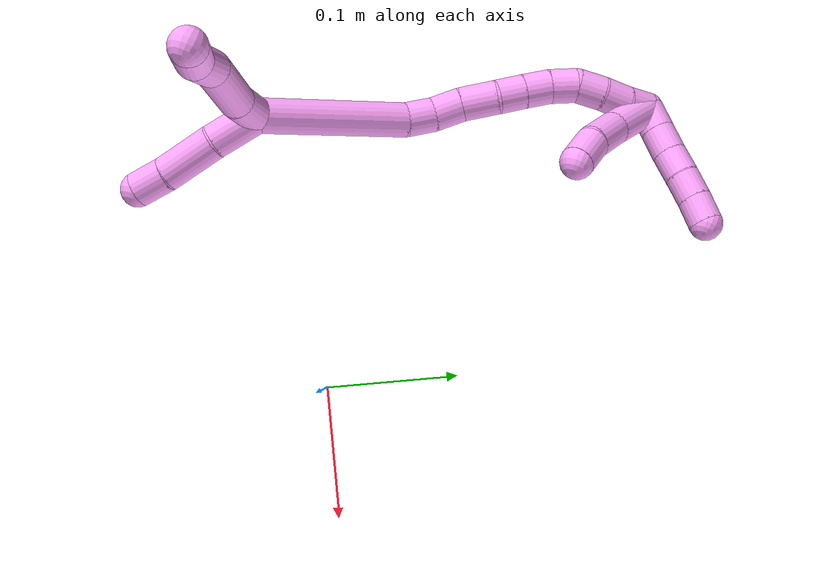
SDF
<sdf version="1.7">
 <world name="default">
  <model name="4">
   <static>0</static>
   <link name="4">
    <collision name="collision-cylinder-e_1_2_8">
     <pose>0.012521 -0.007394 -0.003273 1.98751 0.997351 1.39333</pose>
     <geometry><cylinder><radius>0.0125</radius><length>0.02981</length></cylinder></geometry>
     <surface>
      <friction><ode><mu>1.16</mu><mu2>1.16</mu2><slip1>0</slip1><slip2>0</slip2></ode></friction>
      <contact><ode><kp>1e+06</kp><kd>1</kd><max_vel>0</max_vel><min_depth>0.001</min_depth></ode></contact>
     </surface>
    </collision>
    <visual name="visual-cylinder-e_1_2_8">
     <pose>0.012521 -0.007394 -0.003273 1.98751 0.997351 1.39333</pose>
     <geometry><cylinder><radius>0.0125</radius><length>0.02981</length></cylinder></geometry>
     <material><ambient>1 0.65098 0.996078 1</ambient></material>
    </visual>
    <collision name="collision-cylinder-e_2_8_9">
     <pose>0.047418 -0.024843 -0.0091 1.81958 1.13671 1.37505</pose>
     <geometry><cylinder><radius>0.0125</radius><length>0.049329</length></cylinder></geometry>
     <surface>
      <friction><ode><mu>1.16</mu><mu2>1.16</mu2><slip1>0</slip1><slip2>0</slip2></ode></friction>
      <contact><ode><kp>1e+06</kp><kd>1</kd><max_vel>0</max_vel><min_depth>0.001</min_depth></ode></contact>
     </surface>
    </collision>
    <visual name="visual-cylinder-e_2_8_9">
     <pose>0.047418 -0.024843 -0.0091 1.81958 1.13671 1.37505</pose>
     <geometry><cylinder><radius>0.0125</radius><length>0.049329</length></cylinder></geometry>
     <material><ambient>1 0.65098 0.996078 1</ambient></material>
    </visual>
    <collision name="collision-cylinder-e_3_9_10">
     <pose>0.083105 -0.039448 -0.0173 2.46309 1.07193 2.0694</pose>
     <geometry><cylinder><radius>0.0125</radius><length>0.030313</length></cylinder></geometry>
     <surface>
      <friction><ode><mu>1.16</mu><mu2>1.16</mu2><slip1>0</slip1><slip2>0</slip2></ode></friction>
      <contact><ode><kp>1e+06</kp><kd>1</kd><max_vel>0</max_vel><min_depth>0.001</min_depth></ode></contact>
     </surface>
    </collision>
    <visual name="visual-cylinder-e_3_9_10">
     <pose>0.083105 -0.039448 -0.0173 2.46309 1.07193 2.0694</pose>
     <geometry><cylinder><radius>0.0125</radius><length>0.030313</length></cylinder></geometry>
     <material><ambient>1 0.65098 0.996078 1</ambient></material>
    </visual>
    <collision name="collision-cylinder-e_4_10_6">
     <pose>0.116009 -0.045198 -0.028008 2.9091 1.31125 2.84024</pose>
     <geometry><cylinder><radius>0.0125</radius><length>0.040548</length></cylinder></geometry>
     <surface>
      <friction><ode><mu>1.16</mu><mu2>1.16</mu2><slip1>0</slip1><slip2>0</slip2></ode></friction>
      <contact><ode><kp>1e+06</kp><kd>1</kd><max_vel>0</max_vel><min_depth>0.001</min_depth></ode></contact>
     </surface>
    </collision>
    <visual name="visual-cylinder-e_4_10_6">
     <pose>0.116009 -0.045198 -0.028008 2.9091 1.31125 2.84024</pose>
     <geometry><cylinder><radius>0.0125</radius><length>0.040548</length></cylinder></geometry>
     <material><ambient>1 0.65098 0.996078 1</ambient></material>
    </visual>
    <collision name="collision-cylinder-e_1_2_11">
     <pose>-0.005955 -0.010044 -0.013363 2.49706 -0.342224 -0.955121</pose>
     <geometry><cylinder><radius>0.0125</radius><length>0.035492</length></cylinder></geometry>
     <surface>
      <friction><ode><mu>1.16</mu><mu2>1.16</mu2><slip1>0</slip1><slip2>0</slip2></ode></friction>
      <contact><ode><kp>1e+06</kp><kd>1</kd><max_vel>0</max_vel><min_depth>0.001</min_depth></ode></contact>
     </surface>
    </collision>
    <visual name="visual-cylinder-e_1_2_11">
     <pose>-0.005955 -0.010044 -0.013363 2.49706 -0.342224 -0.955121</pose>
     <geometry><cylinder><radius>0.0125</radius><length>0.035492</length></cylinder></geometry>
     <material><ambient>1 0.65098 0.996078 1</ambient></material>
    </visual>
    <collision name="collision-cylinder-e_2_11_12">
     <pose>-0.021417 -0.030679 -0.041298 2.5131 -0.485583 -1.30234</pose>
     <geometry><cylinder><radius>0.0125</radius><length>0.040736</length></cylinder></geometry>
     <surface>
      <friction><ode><mu>1.16</mu><mu2>1.16</mu2><slip1>0</slip1><slip2>0</slip2></ode></friction>
      <contact><ode><kp>1e+06</kp><kd>1</kd><max_vel>0</max_vel><min_depth>0.001</min_depth></ode></contact>
     </surface>
    </collision>
    <visual name="visual-cylinder-e_2_11_12">
     <pose>-0.021417 -0.030679 -0.041298 2.5131 -0.485583 -1.30234</pose>
     <geometry><cylinder><radius>0.0125</radius><length>0.040736</length></cylinder></geometry>
     <material><ambient>1 0.65098 0.996078 1</ambient></material>
    </visual>
    <collision name="collision-cylinder-e_3_12_5">
     <pose>-0.036914 -0.048219 -0.063425 2.39792 -0.528297 -1.21277</pose>
     <geometry><cylinder><radius>0.0125</radius><length>0.023772</length></cylinder></geometry>
     <surface>
      <friction><ode><mu>1.16</mu><mu2>1.16</mu2><slip1>0</slip1><slip2>0</slip2></ode></friction>
      <contact><ode><kp>1e+06</kp><kd>1</kd><max_vel>0</max_vel><min_depth>0.001</min_depth></ode></contact>
     </surface>
    </collision>
    <visual name="visual-cylinder-e_3_12_5">
     <pose>-0.036914 -0.048219 -0.063425 2.39792 -0.528297 -1.21277</pose>
     <geometry><cylinder><radius>0.0125</radius><length>0.023772</length></cylinder></geometry>
     <material><ambient>1 0.65098 0.996078 1</ambient></material>
    </visual>
    <collision name="collision-cylinder-e_1_2_13">
     <pose>-0.006345 0.048472 0.025033 -1.09408 -0.11579 0.07057</pose>
     <geometry><cylinder><radius>0.0125</radius><length>0.109844</length></cylinder></geometry>
     <surface>
      <friction><ode><mu>1.16</mu><mu2>1.16</mu2><slip1>0</slip1><slip2>0</slip2></ode></friction>
      <contact><ode><kp>1e+06</kp><kd>1</kd><max_vel>0</max_vel><min_depth>0.001</min_depth></ode></contact>
     </surface>
    </collision>
    <visual name="visual-cylinder-e_1_2_13">
     <pose>-0.006345 0.048472 0.025033 -1.09408 -0.11579 0.07057</pose>
     <geometry><cylinder><radius>0.0125</radius><length>0.109844</length></cylinder></geometry>
     <material><ambient>1 0.65098 0.996078 1</ambient></material>
    </visual>
    <collision name="collision-cylinder-e_2_13_14">
     <pose>-0.012162 0.105631 0.05651 -0.932549 0.048834 -0.024581</pose>
     <geometry><cylinder><radius>0.0125</radius><length>0.021659</length></cylinder></geometry>
     <surface>
      <friction><ode><mu>1.16</mu><mu2>1.16</mu2><slip1>0</slip1><slip2>0</slip2></ode></friction>
      <contact><ode><kp>1e+06</kp><kd>1</kd><max_vel>0</max_vel><min_depth>0.001</min_depth></ode></contact>
     </surface>
    </collision>
    <visual name="visual-cylinder-e_2_13_14">
     <pose>-0.012162 0.105631 0.05651 -0.932549 0.048834 -0.024581</pose>
     <geometry><cylinder><radius>0.0125</radius><length>0.021659</length></cylinder></geometry>
     <material><ambient>1 0.65098 0.996078 1</ambient></material>
    </visual>
    <collision name="collision-cylinder-e_3_14_15">
     <pose>-0.008518 0.122109 0.069879 -0.844202 0.290388 -0.131148</pose>
     <geometry><cylinder><radius>0.0125</radius><length>0.021758</length></cylinder></geometry>
     <surface>
      <friction><ode><mu>1.16</mu><mu2>1.16</mu2><slip1>0</slip1><slip2>0</slip2></ode></friction>
      <contact><ode><kp>1e+06</kp><kd>1</kd><max_vel>0</max_vel><min_depth>0.001</min_depth></ode></contact>
     </surface>
    </collision>
    <visual name="visual-cylinder-e_3_14_15">
     <pose>-0.008518 0.122109 0.069879 -0.844202 0.290388 -0.131148</pose>
     <geometry><cylinder><radius>0.0125</radius><length>0.021758</length></cylinder></geometry>
     <material><ambient>1 0.65098 0.996078 1</ambient></material>
    </visual>
    <collision name="collision-cylinder-e_4_15_16">
     <pose>-0.001164 0.140623 0.083536 -1.01012 0.323137 -0.179745</pose>
     <geometry><cylinder><radius>0.0125</radius><length>0.026703</length></cylinder></geometry>
     <surface>
      <friction><ode><mu>1.16</mu><mu2>1.16</mu2><slip1>0</slip1><slip2>0</slip2></ode></friction>
      <contact><ode><kp>1e+06</kp><kd>1</kd><max_vel>0</max_vel><min_depth>0.001</min_depth></ode></contact>
     </surface>
    </collision>
    <visual name="visual-cylinder-e_4_15_16">
     <pose>-0.001164 0.140623 0.083536 -1.01012 0.323137 -0.179745</pose>
     <geometry><cylinder><radius>0.0125</radius><length>0.026703</length></cylinder></geometry>
     <material><ambient>1 0.65098 0.996078 1</ambient></material>
    </visual>
    <collision name="collision-cylinder-e_5_16_17">
     <pose>0.004428 0.159345 0.096119 -0.939461 0.135601 -0.068913</pose>
     <geometry><cylinder><radius>0.0125</radius><length>0.020005</length></cylinder></geometry>
     <surface>
      <friction><ode><mu>1.16</mu><mu2>1.16</mu2><slip1>0</slip1><slip2>0</slip2></ode></friction>
      <contact><ode><kp>1e+06</kp><kd>1</kd><max_vel>0</max_vel><min_depth>0.001</min_depth></ode></contact>
     </surface>
    </collision>
    <visual name="visual-cylinder-e_5_16_17">
     <pose>0.004428 0.159345 0.096119 -0.939461 0.135601 -0.068913</pose>
     <geometry><cylinder><radius>0.0125</radius><length>0.020005</length></cylinder></geometry>
     <material><ambient>1 0.65098 0.996078 1</ambient></material>
    </visual>
    <collision name="collision-cylinder-e_6_17_18">
     <pose>0.00714 0.175454 0.107667 -0.958148 0.136264 -0.07086</pose>
     <geometry><cylinder><radius>0.0125</radius><length>0.020008</length></cylinder></geometry>
     <surface>
      <friction><ode><mu>1.16</mu><mu2>1.16</mu2><slip1>0</slip1><slip2>0</slip2></ode></friction>
      <contact><ode><kp>1e+06</kp><kd>1</kd><max_vel>0</max_vel><min_depth>0.001</min_depth></ode></contact>
     </surface>
    </collision>
    <visual name="visual-cylinder-e_6_17_18">
     <pose>0.00714 0.175454 0.107667 -0.958148 0.136264 -0.07086</pose>
     <geometry><cylinder><radius>0.0125</radius><length>0.020008</length></cylinder></geometry>
     <material><ambient>1 0.65098 0.996078 1</ambient></material>
    </visual>
    <collision name="collision-cylinder-e_7_18_19">
     <pose>0.010362 0.192461 0.117535 -1.13274 0.187381 -0.119356</pose>
     <geometry><cylinder><radius>0.0125</radius><length>0.020003</length></cylinder></geometry>
     <surface>
      <friction><ode><mu>1.16</mu><mu2>1.16</mu2><slip1>0</slip1><slip2>0</slip2></ode></friction>
      <contact><ode><kp>1e+06</kp><kd>1</kd><max_vel>0</max_vel><min_depth>0.001</min_depth></ode></contact>
     </surface>
    </collision>
    <visual name="visual-cylinder-e_7_18_19">
     <pose>0.010362 0.192461 0.117535 -1.13274 0.187381 -0.119356</pose>
     <geometry><cylinder><radius>0.0125</radius><length>0.020003</length></cylinder></geometry>
     <material><ambient>1 0.65098 0.996078 1</ambient></material>
    </visual>
    <collision name="collision-cylinder-e_8_19_20">
     <pose>0.01239 0.21126 0.123167 -1.42401 0.016534 -0.014269</pose>
     <geometry><cylinder><radius>0.0125</radius><length>0.020018</length></cylinder></geometry>
     <surface>
      <friction><ode><mu>1.16</mu><mu2>1.16</mu2><slip1>0</slip1><slip2>0</slip2></ode></friction>
      <contact><ode><kp>1e+06</kp><kd>1</kd><max_vel>0</max_vel><min_depth>0.001</min_depth></ode></contact>
     </surface>
    </collision>
    <visual name="visual-cylinder-e_8_19_20">
     <pose>0.01239 0.21126 0.123167 -1.42401 0.016534 -0.014269</pose>
     <geometry><cylinder><radius>0.0125</radius><length>0.020018</length></cylinder></geometry>
     <material><ambient>1 0.65098 0.996078 1</ambient></material>
    </visual>
    <collision name="collision-cylinder-e_9_20_21">
     <pose>0.011227 0.230969 0.126055 -1.42654 -0.133214 0.115304</pose>
     <geometry><cylinder><radius>0.0125</radius><length>0.020001</length></cylinder></geometry>
     <surface>
      <friction><ode><mu>1.16</mu><mu2>1.16</mu2><slip1>0</slip1><slip2>0</slip2></ode></friction>
      <contact><ode><kp>1e+06</kp><kd>1</kd><max_vel>0</max_vel><min_depth>0.001</min_depth></ode></contact>
     </surface>
    </collision>
    <visual name="visual-cylinder-e_9_20_21">
     <pose>0.011227 0.230969 0.126055 -1.42654 -0.133214 0.115304</pose>
     <geometry><cylinder><radius>0.0125</radius><length>0.020001</length></cylinder></geometry>
     <material><ambient>1 0.65098 0.996078 1</ambient></material>
    </visual>
    <collision name="collision-cylinder-e_10_21_1">
     <pose>0.007391 0.25003 0.130327 -1.27233 -0.253498 0.18769</pose>
     <geometry><cylinder><radius>0.0125</radius><length>0.020001</length></cylinder></geometry>
     <surface>
      <friction><ode><mu>1.16</mu><mu2>1.16</mu2><slip1>0</slip1><slip2>0</slip2></ode></friction>
      <contact><ode><kp>1e+06</kp><kd>1</kd><max_vel>0</max_vel><min_depth>0.001</min_depth></ode></contact>
     </surface>
    </collision>
    <visual name="visual-cylinder-e_10_21_1">
     <pose>0.007391 0.25003 0.130327 -1.27233 -0.253498 0.18769</pose>
     <geometry><cylinder><radius>0.0125</radius><length>0.020001</length></cylinder></geometry>
     <material><ambient>1 0.65098 0.996078 1</ambient></material>
    </visual>
    <collision name="collision-cylinder-e_1_1_22">
     <pose>0.006794 0.265701 0.125747 -2.42887 0.192305 -0.507047</pose>
     <geometry><cylinder><radius>0.0125</radius><length>0.02</length></cylinder></geometry>
     <surface>
      <friction><ode><mu>1.16</mu><mu2>1.16</mu2><slip1>0</slip1><slip2>0</slip2></ode></friction>
      <contact><ode><kp>1e+06</kp><kd>1</kd><max_vel>0</max_vel><min_depth>0.001</min_depth></ode></contact>
     </surface>
    </collision>
    <visual name="visual-cylinder-e_1_1_22">
     <pose>0.006794 0.265701 0.125747 -2.42887 0.192305 -0.507047</pose>
     <geometry><cylinder><radius>0.0125</radius><length>0.02</length></cylinder></geometry>
     <material><ambient>1 0.65098 0.996078 1</ambient></material>
    </visual>
    <collision name="collision-cylinder-e_2_22_23">
     <pose>0.010601 0.278627 0.110967 -2.4172 0.190659 -0.494382</pose>
     <geometry><cylinder><radius>0.0125</radius><length>0.02</length></cylinder></geometry>
     <surface>
      <friction><ode><mu>1.16</mu><mu2>1.16</mu2><slip1>0</slip1><slip2>0</slip2></ode></friction>
      <contact><ode><kp>1e+06</kp><kd>1</kd><max_vel>0</max_vel><min_depth>0.001</min_depth></ode></contact>
     </surface>
    </collision>
    <visual name="visual-cylinder-e_2_22_23">
     <pose>0.010601 0.278627 0.110967 -2.4172 0.190659 -0.494382</pose>
     <geometry><cylinder><radius>0.0125</radius><length>0.02</length></cylinder></geometry>
     <material><ambient>1 0.65098 0.996078 1</ambient></material>
    </visual>
    <collision name="collision-cylinder-e_3_23_24">
     <pose>0.01494 0.291634 0.096419 -2.40679 0.246974 -0.623922</pose>
     <geometry><cylinder><radius>0.0125</radius><length>0.02</length></cylinder></geometry>
     <surface>
      <friction><ode><mu>1.16</mu><mu2>1.16</mu2><slip1>0</slip1><slip2>0</slip2></ode></friction>
      <contact><ode><kp>1e+06</kp><kd>1</kd><max_vel>0</max_vel><min_depth>0.001</min_depth></ode></contact>
     </surface>
    </collision>
    <visual name="visual-cylinder-e_3_23_24">
     <pose>0.01494 0.291634 0.096419 -2.40679 0.246974 -0.623922</pose>
     <geometry><cylinder><radius>0.0125</radius><length>0.02</length></cylinder></geometry>
     <material><ambient>1 0.65098 0.996078 1</ambient></material>
    </visual>
    <collision name="collision-cylinder-e_4_24_25">
     <pose>0.019094 0.304872 0.082035 -2.38871 0.171752 -0.428867</pose>
     <geometry><cylinder><radius>0.0125</radius><length>0.02</length></cylinder></geometry>
     <surface>
      <friction><ode><mu>1.16</mu><mu2>1.16</mu2><slip1>0</slip1><slip2>0</slip2></ode></friction>
      <contact><ode><kp>1e+06</kp><kd>1</kd><max_vel>0</max_vel><min_depth>0.001</min_depth></ode></contact>
     </surface>
    </collision>
    <visual name="visual-cylinder-e_4_24_25">
     <pose>0.019094 0.304872 0.082035 -2.38871 0.171752 -0.428867</pose>
     <geometry><cylinder><radius>0.0125</radius><length>0.02</length></cylinder></geometry>
     <material><ambient>1 0.65098 0.996078 1</ambient></material>
    </visual>
    <collision name="collision-cylinder-e_5_25_4">
     <pose>0.022369 0.317993 0.067309 -2.43877 0.15723 -0.423302</pose>
     <geometry><cylinder><radius>0.0125</radius><length>0.02</length></cylinder></geometry>
     <surface>
      <friction><ode><mu>1.16</mu><mu2>1.16</mu2><slip1>0</slip1><slip2>0</slip2></ode></friction>
      <contact><ode><kp>1e+06</kp><kd>1</kd><max_vel>0</max_vel><min_depth>0.001</min_depth></ode></contact>
     </surface>
    </collision>
    <visual name="visual-cylinder-e_5_25_4">
     <pose>0.022369 0.317993 0.067309 -2.43877 0.15723 -0.423302</pose>
     <geometry><cylinder><radius>0.0125</radius><length>0.02</length></cylinder></geometry>
     <material><ambient>1 0.65098 0.996078 1</ambient></material>
    </visual>
    <collision name="collision-cylinder-e_1_1_26">
     <pose>0.012023 0.248061 0.116278 2.55528 0.338457 1.03016</pose>
     <geometry><cylinder><radius>0.0125</radius><length>0.043005</length></cylinder></geometry>
     <surface>
      <friction><ode><mu>1.16</mu><mu2>1.16</mu2><slip1>0</slip1><slip2>0</slip2></ode></friction>
      <contact><ode><kp>1e+06</kp><kd>1</kd><max_vel>0</max_vel><min_depth>0.001</min_depth></ode></contact>
     </surface>
    </collision>
    <visual name="visual-cylinder-e_1_1_26">
     <pose>0.012023 0.248061 0.116278 2.55528 0.338457 1.03016</pose>
     <geometry><cylinder><radius>0.0125</radius><length>0.043005</length></cylinder></geometry>
     <material><ambient>1 0.65098 0.996078 1</ambient></material>
    </visual>
    <collision name="collision-cylinder-e_2_26_27">
     <pose>0.025997 0.229704 0.087066 2.61653 0.447647 1.4056</pose>
     <geometry><cylinder><radius>0.0125</radius><length>0.03158</length></cylinder></geometry>
     <surface>
      <friction><ode><mu>1.16</mu><mu2>1.16</mu2><slip1>0</slip1><slip2>0</slip2></ode></friction>
      <contact><ode><kp>1e+06</kp><kd>1</kd><max_vel>0</max_vel><min_depth>0.001</min_depth></ode></contact>
     </surface>
    </collision>
    <visual name="visual-cylinder-e_2_26_27">
     <pose>0.025997 0.229704 0.087066 2.61653 0.447647 1.4056</pose>
     <geometry><cylinder><radius>0.0125</radius><length>0.03158</length></cylinder></geometry>
     <material><ambient>1 0.65098 0.996078 1</ambient></material>
    </visual>
    <collision name="collision-cylinder-e_3_27_3">
     <pose>0.037063 0.218987 0.063315 2.83801 0.339505 1.68433</pose>
     <geometry><cylinder><radius>0.0125</radius><length>0.025415</length></cylinder></geometry>
     <surface>
      <friction><ode><mu>1.16</mu><mu2>1.16</mu2><slip1>0</slip1><slip2>0</slip2></ode></friction>
      <contact><ode><kp>1e+06</kp><kd>1</kd><max_vel>0</max_vel><min_depth>0.001</min_depth></ode></contact>
     </surface>
    </collision>
    <visual name="visual-cylinder-e_3_27_3">
     <pose>0.037063 0.218987 0.063315 2.83801 0.339505 1.68433</pose>
     <geometry><cylinder><radius>0.0125</radius><length>0.025415</length></cylinder></geometry>
     <material><ambient>1 0.65098 0.996078 1</ambient></material>
    </visual>
    <collision name="collision-sphere-3">
     <pose>0.041295 0.215405 0.051881 0 -0 0</pose>
     <geometry><sphere><radius>0.0125</radius></sphere></geometry>
     <surface>
      <friction><ode><mu>1.16</mu><mu2>1.16</mu2><slip1>0</slip1><slip2>0</slip2></ode></friction>
      <contact><ode><kp>1e+06</kp><kd>1</kd><max_vel>0</max_vel><min_depth>0.001</min_depth></ode></contact>
     </surface>
    </collision>
    <visual name="visual-sphere-3">
     <pose>0.041295 0.215405 0.051881 0 -0 0</pose>
     <geometry><sphere><radius>0.0125</radius></sphere></geometry>
     <material><ambient>1 0.65098 0.996078 1</ambient></material>
    </visual>
    <collision name="collision-sphere-27">
     <pose>0.032832 0.222569 0.074749 0 -0 0</pose>
     <geometry><sphere><radius>0.0125</radius></sphere></geometry>
     <surface>
      <friction><ode><mu>1.16</mu><mu2>1.16</mu2><slip1>0</slip1><slip2>0</slip2></ode></friction>
      <contact><ode><kp>1e+06</kp><kd>1</kd><max_vel>0</max_vel><min_depth>0.001</min_depth></ode></contact>
     </surface>
    </collision>
    <visual name="visual-sphere-27">
     <pose>0.032832 0.222569 0.074749 0 -0 0</pose>
     <geometry><sphere><radius>0.0125</radius></sphere></geometry>
     <material><ambient>1 0.65098 0.996078 1</ambient></material>
    </visual>
    <collision name="collision-sphere-26">
     <pose>0.019162 0.236839 0.099383 0 -0 0</pose>
     <geometry><sphere><radius>0.0125</radius></sphere></geometry>
     <surface>
      <friction><ode><mu>1.16</mu><mu2>1.16</mu2><slip1>0</slip1><slip2>0</slip2></ode></friction>
      <contact><ode><kp>1e+06</kp><kd>1</kd><max_vel>0</max_vel><min_depth>0.001</min_depth></ode></contact>
     </surface>
    </collision>
    <visual name="visual-sphere-26">
     <pose>0.019162 0.236839 0.099383 0 -0 0</pose>
     <geometry><sphere><radius>0.0125</radius></sphere></geometry>
     <material><ambient>1 0.65098 0.996078 1</ambient></material>
    </visual>
    <collision name="collision-sphere-4">
     <pose>0.023935 0.324377 0.059773 0 -0 0</pose>
     <geometry><sphere><radius>0.0125</radius></sphere></geometry>
     <surface>
      <friction><ode><mu>1.16</mu><mu2>1.16</mu2><slip1>0</slip1><slip2>0</slip2></ode></friction>
      <contact><ode><kp>1e+06</kp><kd>1</kd><max_vel>0</max_vel><min_depth>0.001</min_depth></ode></contact>
     </surface>
    </collision>
    <visual name="visual-sphere-4">
     <pose>0.023935 0.324377 0.059773 0 -0 0</pose>
     <geometry><sphere><radius>0.0125</radius></sphere></geometry>
     <material><ambient>1 0.65098 0.996078 1</ambient></material>
    </visual>
    <collision name="collision-sphere-25">
     <pose>0.020803 0.311609 0.074845 0 -0 0</pose>
     <geometry><sphere><radius>0.0125</radius></sphere></geometry>
     <surface>
      <friction><ode><mu>1.16</mu><mu2>1.16</mu2><slip1>0</slip1><slip2>0</slip2></ode></friction>
      <contact><ode><kp>1e+06</kp><kd>1</kd><max_vel>0</max_vel><min_depth>0.001</min_depth></ode></contact>
     </surface>
    </collision>
    <visual name="visual-sphere-25">
     <pose>0.020803 0.311609 0.074845 0 -0 0</pose>
     <geometry><sphere><radius>0.0125</radius></sphere></geometry>
     <material><ambient>1 0.65098 0.996078 1</ambient></material>
    </visual>
    <collision name="collision-sphere-24">
     <pose>0.017385 0.298135 0.089225 0 -0 0</pose>
     <geometry><sphere><radius>0.0125</radius></sphere></geometry>
     <surface>
      <friction><ode><mu>1.16</mu><mu2>1.16</mu2><slip1>0</slip1><slip2>0</slip2></ode></friction>
      <contact><ode><kp>1e+06</kp><kd>1</kd><max_vel>0</max_vel><min_depth>0.001</min_depth></ode></contact>
     </surface>
    </collision>
    <visual name="visual-sphere-24">
     <pose>0.017385 0.298135 0.089225 0 -0 0</pose>
     <geometry><sphere><radius>0.0125</radius></sphere></geometry>
     <material><ambient>1 0.65098 0.996078 1</ambient></material>
    </visual>
    <collision name="collision-sphere-23">
     <pose>0.012496 0.285133 0.103614 0 -0 0</pose>
     <geometry><sphere><radius>0.0125</radius></sphere></geometry>
     <surface>
      <friction><ode><mu>1.16</mu><mu2>1.16</mu2><slip1>0</slip1><slip2>0</slip2></ode></friction>
      <contact><ode><kp>1e+06</kp><kd>1</kd><max_vel>0</max_vel><min_depth>0.001</min_depth></ode></contact>
     </surface>
    </collision>
    <visual name="visual-sphere-23">
     <pose>0.012496 0.285133 0.103614 0 -0 0</pose>
     <geometry><sphere><radius>0.0125</radius></sphere></geometry>
     <material><ambient>1 0.65098 0.996078 1</ambient></material>
    </visual>
    <collision name="collision-sphere-22">
     <pose>0.008706 0.27212 0.11832 0 -0 0</pose>
     <geometry><sphere><radius>0.0125</radius></sphere></geometry>
     <surface>
      <friction><ode><mu>1.16</mu><mu2>1.16</mu2><slip1>0</slip1><slip2>0</slip2></ode></friction>
      <contact><ode><kp>1e+06</kp><kd>1</kd><max_vel>0</max_vel><min_depth>0.001</min_depth></ode></contact>
     </surface>
    </collision>
    <visual name="visual-sphere-22">
     <pose>0.008706 0.27212 0.11832 0 -0 0</pose>
     <geometry><sphere><radius>0.0125</radius></sphere></geometry>
     <material><ambient>1 0.65098 0.996078 1</ambient></material>
    </visual>
    <collision name="collision-sphere-1">
     <pose>0.004883 0.259283 0.133173 0 -0 0</pose>
     <geometry><sphere><radius>0.0125</radius></sphere></geometry>
     <surface>
      <friction><ode><mu>1.16</mu><mu2>1.16</mu2><slip1>0</slip1><slip2>0</slip2></ode></friction>
      <contact><ode><kp>1e+06</kp><kd>1</kd><max_vel>0</max_vel><min_depth>0.001</min_depth></ode></contact>
     </surface>
    </collision>
    <visual name="visual-sphere-1">
     <pose>0.004883 0.259283 0.133173 0 -0 0</pose>
     <geometry><sphere><radius>0.0125</radius></sphere></geometry>
     <material><ambient>1 0.65098 0.996078 1</ambient></material>
    </visual>
    <collision name="collision-sphere-21">
     <pose>0.009899 0.240778 0.12748 0 -0 0</pose>
     <geometry><sphere><radius>0.0125</radius></sphere></geometry>
     <surface>
      <friction><ode><mu>1.16</mu><mu2>1.16</mu2><slip1>0</slip1><slip2>0</slip2></ode></friction>
      <contact><ode><kp>1e+06</kp><kd>1</kd><max_vel>0</max_vel><min_depth>0.001</min_depth></ode></contact>
     </surface>
    </collision>
    <visual name="visual-sphere-21">
     <pose>0.009899 0.240778 0.12748 0 -0 0</pose>
     <geometry><sphere><radius>0.0125</radius></sphere></geometry>
     <material><ambient>1 0.65098 0.996078 1</ambient></material>
    </visual>
    <collision name="collision-sphere-11">
     <pose>-0.011911 -0.020088 -0.026727 0 -0 0</pose>
     <geometry><sphere><radius>0.0125</radius></sphere></geometry>
     <surface>
      <friction><ode><mu>1.16</mu><mu2>1.16</mu2><slip1>0</slip1><slip2>0</slip2></ode></friction>
      <contact><ode><kp>1e+06</kp><kd>1</kd><max_vel>0</max_vel><min_depth>0.001</min_depth></ode></contact>
     </surface>
    </collision>
    <visual name="visual-sphere-11">
     <pose>-0.011911 -0.020088 -0.026727 0 -0 0</pose>
     <geometry><sphere><radius>0.0125</radius></sphere></geometry>
     <material><ambient>1 0.65098 0.996078 1</ambient></material>
    </visual>
    <collision name="collision-sphere-6">
     <pose>0.135604 -0.046397 -0.033072 0 -0 0</pose>
     <geometry><sphere><radius>0.0125</radius></sphere></geometry>
     <surface>
      <friction><ode><mu>1.16</mu><mu2>1.16</mu2><slip1>0</slip1><slip2>0</slip2></ode></friction>
      <contact><ode><kp>1e+06</kp><kd>1</kd><max_vel>0</max_vel><min_depth>0.001</min_depth></ode></contact>
     </surface>
    </collision>
    <visual name="visual-sphere-6">
     <pose>0.135604 -0.046397 -0.033072 0 -0 0</pose>
     <geometry><sphere><radius>0.0125</radius></sphere></geometry>
     <material><ambient>1 0.65098 0.996078 1</ambient></material>
    </visual>
    <collision name="collision-sphere-10">
     <pose>0.096414 -0.043999 -0.022945 0 -0 0</pose>
     <geometry><sphere><radius>0.0125</radius></sphere></geometry>
     <surface>
      <friction><ode><mu>1.16</mu><mu2>1.16</mu2><slip1>0</slip1><slip2>0</slip2></ode></friction>
      <contact><ode><kp>1e+06</kp><kd>1</kd><max_vel>0</max_vel><min_depth>0.001</min_depth></ode></contact>
     </surface>
    </collision>
    <visual name="visual-sphere-10">
     <pose>0.096414 -0.043999 -0.022945 0 -0 0</pose>
     <geometry><sphere><radius>0.0125</radius></sphere></geometry>
     <material><ambient>1 0.65098 0.996078 1</ambient></material>
    </visual>
    <collision name="collision-sphere-9">
     <pose>0.069795 -0.034897 -0.011655 0 -0 0</pose>
     <geometry><sphere><radius>0.0125</radius></sphere></geometry>
     <surface>
      <friction><ode><mu>1.16</mu><mu2>1.16</mu2><slip1>0</slip1><slip2>0</slip2></ode></friction>
      <contact><ode><kp>1e+06</kp><kd>1</kd><max_vel>0</max_vel><min_depth>0.001</min_depth></ode></contact>
     </surface>
    </collision>
    <visual name="visual-sphere-9">
     <pose>0.069795 -0.034897 -0.011655 0 -0 0</pose>
     <geometry><sphere><radius>0.0125</radius></sphere></geometry>
     <material><ambient>1 0.65098 0.996078 1</ambient></material>
    </visual>
    <collision name="collision-sphere-2">
     <geometry><sphere><radius>0.0125</radius></sphere></geometry>
     <surface>
      <friction><ode><mu>1.16</mu><mu2>1.16</mu2><slip1>0</slip1><slip2>0</slip2></ode></friction>
      <contact><ode><kp>1e+06</kp><kd>1</kd><max_vel>0</max_vel><min_depth>0.001</min_depth></ode></contact>
     </surface>
    </collision>
    <visual name="visual-sphere-2">
     <geometry><sphere><radius>0.0125</radius></sphere></geometry>
     <material><ambient>1 0.65098 0.996078 1</ambient></material>
    </visual>
    <collision name="collision-sphere-19">
     <pose>0.012225 0.20136 0.121703 0 -0 0</pose>
     <geometry><sphere><radius>0.0125</radius></sphere></geometry>
     <surface>
      <friction><ode><mu>1.16</mu><mu2>1.16</mu2><slip1>0</slip1><slip2>0</slip2></ode></friction>
      <contact><ode><kp>1e+06</kp><kd>1</kd><max_vel>0</max_vel><min_depth>0.001</min_depth></ode></contact>
     </surface>
    </collision>
    <visual name="visual-sphere-19">
     <pose>0.012225 0.20136 0.121703 0 -0 0</pose>
     <geometry><sphere><radius>0.0125</radius></sphere></geometry>
     <material><ambient>1 0.65098 0.996078 1</ambient></material>
    </visual>
    <collision name="collision-sphere-8">
     <pose>0.025042 -0.014789 -0.006546 0 -0 0</pose>
     <geometry><sphere><radius>0.0125</radius></sphere></geometry>
     <surface>
      <friction><ode><mu>1.16</mu><mu2>1.16</mu2><slip1>0</slip1><slip2>0</slip2></ode></friction>
      <contact><ode><kp>1e+06</kp><kd>1</kd><max_vel>0</max_vel><min_depth>0.001</min_depth></ode></contact>
     </surface>
    </collision>
    <visual name="visual-sphere-8">
     <pose>0.025042 -0.014789 -0.006546 0 -0 0</pose>
     <geometry><sphere><radius>0.0125</radius></sphere></geometry>
     <material><ambient>1 0.65098 0.996078 1</ambient></material>
    </visual>
    <collision name="collision-sphere-12">
     <pose>-0.030923 -0.041269 -0.055869 0 -0 0</pose>
     <geometry><sphere><radius>0.0125</radius></sphere></geometry>
     <surface>
      <friction><ode><mu>1.16</mu><mu2>1.16</mu2><slip1>0</slip1><slip2>0</slip2></ode></friction>
      <contact><ode><kp>1e+06</kp><kd>1</kd><max_vel>0</max_vel><min_depth>0.001</min_depth></ode></contact>
     </surface>
    </collision>
    <visual name="visual-sphere-12">
     <pose>-0.030923 -0.041269 -0.055869 0 -0 0</pose>
     <geometry><sphere><radius>0.0125</radius></sphere></geometry>
     <material><ambient>1 0.65098 0.996078 1</ambient></material>
    </visual>
    <collision name="collision-sphere-5">
     <pose>-0.042906 -0.055168 -0.07098 0 -0 0</pose>
     <geometry><sphere><radius>0.0125</radius></sphere></geometry>
     <surface>
      <friction><ode><mu>1.16</mu><mu2>1.16</mu2><slip1>0</slip1><slip2>0</slip2></ode></friction>
      <contact><ode><kp>1e+06</kp><kd>1</kd><max_vel>0</max_vel><min_depth>0.001</min_depth></ode></contact>
     </surface>
    </collision>
    <visual name="visual-sphere-5">
     <pose>-0.042906 -0.055168 -0.07098 0 -0 0</pose>
     <geometry><sphere><radius>0.0125</radius></sphere></geometry>
     <material><ambient>1 0.65098 0.996078 1</ambient></material>
    </visual>
    <collision name="collision-sphere-13">
     <pose>-0.01269 0.096944 0.050066 0 -0 0</pose>
     <geometry><sphere><radius>0.0125</radius></sphere></geometry>
     <surface>
      <friction><ode><mu>1.16</mu><mu2>1.16</mu2><slip1>0</slip1><slip2>0</slip2></ode></friction>
      <contact><ode><kp>1e+06</kp><kd>1</kd><max_vel>0</max_vel><min_depth>0.001</min_depth></ode></contact>
     </surface>
    </collision>
    <visual name="visual-sphere-13">
     <pose>-0.01269 0.096944 0.050066 0 -0 0</pose>
     <geometry><sphere><radius>0.0125</radius></sphere></geometry>
     <material><ambient>1 0.65098 0.996078 1</ambient></material>
    </visual>
    <collision name="collision-sphere-14">
     <pose>-0.011633 0.114319 0.062955 0 -0 0</pose>
     <geometry><sphere><radius>0.0125</radius></sphere></geometry>
     <surface>
      <friction><ode><mu>1.16</mu><mu2>1.16</mu2><slip1>0</slip1><slip2>0</slip2></ode></friction>
      <contact><ode><kp>1e+06</kp><kd>1</kd><max_vel>0</max_vel><min_depth>0.001</min_depth></ode></contact>
     </surface>
    </collision>
    <visual name="visual-sphere-14">
     <pose>-0.011633 0.114319 0.062955 0 -0 0</pose>
     <geometry><sphere><radius>0.0125</radius></sphere></geometry>
     <material><ambient>1 0.65098 0.996078 1</ambient></material>
    </visual>
    <collision name="collision-sphere-15">
     <pose>-0.005403 0.1299 0.076804 0 -0 0</pose>
     <geometry><sphere><radius>0.0125</radius></sphere></geometry>
     <surface>
      <friction><ode><mu>1.16</mu><mu2>1.16</mu2><slip1>0</slip1><slip2>0</slip2></ode></friction>
      <contact><ode><kp>1e+06</kp><kd>1</kd><max_vel>0</max_vel><min_depth>0.001</min_depth></ode></contact>
     </surface>
    </collision>
    <visual name="visual-sphere-15">
     <pose>-0.005403 0.1299 0.076804 0 -0 0</pose>
     <geometry><sphere><radius>0.0125</radius></sphere></geometry>
     <material><ambient>1 0.65098 0.996078 1</ambient></material>
    </visual>
    <collision name="collision-sphere-16">
     <pose>0.003076 0.151345 0.090269 0 -0 0</pose>
     <geometry><sphere><radius>0.0125</radius></sphere></geometry>
     <surface>
      <friction><ode><mu>1.16</mu><mu2>1.16</mu2><slip1>0</slip1><slip2>0</slip2></ode></friction>
      <contact><ode><kp>1e+06</kp><kd>1</kd><max_vel>0</max_vel><min_depth>0.001</min_depth></ode></contact>
     </surface>
    </collision>
    <visual name="visual-sphere-16">
     <pose>0.003076 0.151345 0.090269 0 -0 0</pose>
     <geometry><sphere><radius>0.0125</radius></sphere></geometry>
     <material><ambient>1 0.65098 0.996078 1</ambient></material>
    </visual>
    <collision name="collision-sphere-17">
     <pose>0.005781 0.167346 0.101968 0 -0 0</pose>
     <geometry><sphere><radius>0.0125</radius></sphere></geometry>
     <surface>
      <friction><ode><mu>1.16</mu><mu2>1.16</mu2><slip1>0</slip1><slip2>0</slip2></ode></friction>
      <contact><ode><kp>1e+06</kp><kd>1</kd><max_vel>0</max_vel><min_depth>0.001</min_depth></ode></contact>
     </surface>
    </collision>
    <visual name="visual-sphere-17">
     <pose>0.005781 0.167346 0.101968 0 -0 0</pose>
     <geometry><sphere><radius>0.0125</radius></sphere></geometry>
     <material><ambient>1 0.65098 0.996078 1</ambient></material>
    </visual>
    <collision name="collision-sphere-18">
     <pose>0.008499 0.183563 0.113367 0 -0 0</pose>
     <geometry><sphere><radius>0.0125</radius></sphere></geometry>
     <surface>
      <friction><ode><mu>1.16</mu><mu2>1.16</mu2><slip1>0</slip1><slip2>0</slip2></ode></friction>
      <contact><ode><kp>1e+06</kp><kd>1</kd><max_vel>0</max_vel><min_depth>0.001</min_depth></ode></contact>
     </surface>
    </collision>
    <visual name="visual-sphere-18">
     <pose>0.008499 0.183563 0.113367 0 -0 0</pose>
     <geometry><sphere><radius>0.0125</radius></sphere></geometry>
     <material><ambient>1 0.65098 0.996078 1</ambient></material>
    </visual>
    <collision name="collision-sphere-20">
     <pose>0.012556 0.22116 0.12463 0 -0 0</pose>
     <geometry><sphere><radius>0.0125</radius></sphere></geometry>
     <surface>
      <friction><ode><mu>1.16</mu><mu2>1.16</mu2><slip1>0</slip1><slip2>0</slip2></ode></friction>
      <contact><ode><kp>1e+06</kp><kd>1</kd><max_vel>0</max_vel><min_depth>0.001</min_depth></ode></contact>
     </surface>
    </collision>
    <visual name="visual-sphere-20">
     <pose>0.012556 0.22116 0.12463 0 -0 0</pose>
     <geometry><sphere><radius>0.0125</radius></sphere></geometry>
     <material><ambient>1 0.65098 0.996078 1</ambient></material>
    </visual>
    <inertial>
     <pose>0.015483 0.111812 0.046512 0 -0 0</pose>
     <mass>0.75</mass>
     <inertia>
      <ixx>0.000168</ixx>
      <ixy>0</ixy>
      <ixz>0</ixz>
      <iyy>0.000103</iyy>
      <iyz>0</iyz>
      <izz>-0.000118</izz>
     </inertia>
    </inertial>
   </link>
   <pose>-0.194952 -0.024351 0.096102 -2.63727 -1.25871 2.15152</pose>
  </model>
 </world>
</sdf>
